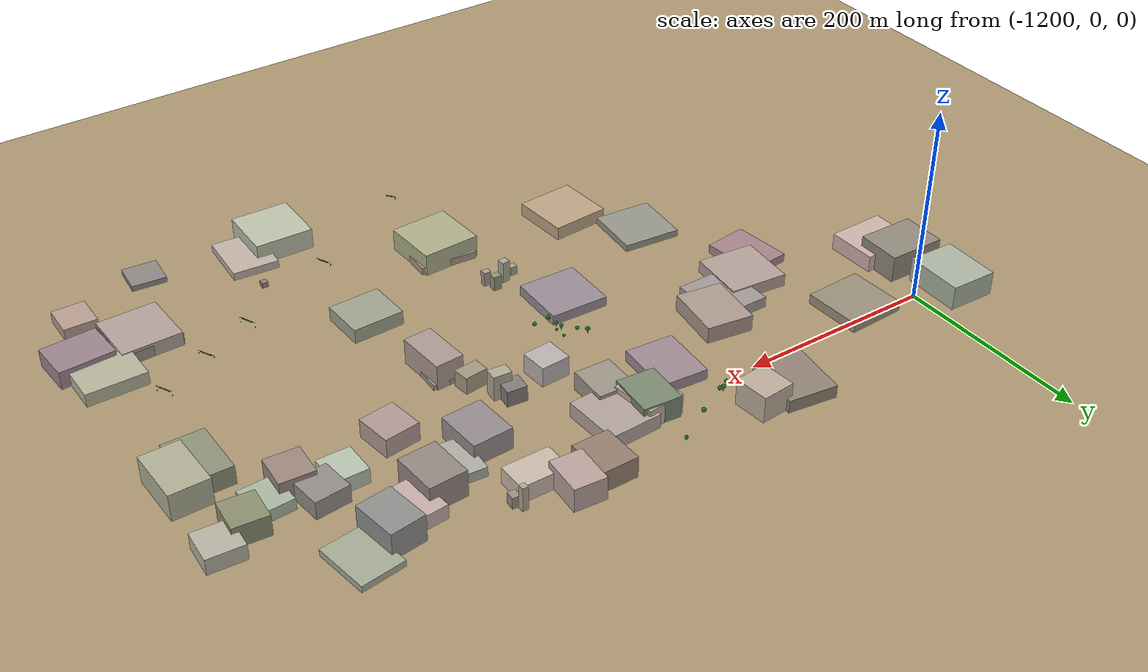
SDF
<sdf version="1.9">
 <world name="crossroad_world">
  <model name="ground_plane">
   <static>true</static>
   <pose>0 0 -0.05 0 0 0</pose>
   <link name="link">
    <collision name="collision">
     <geometry><plane><normal>0 0 1</normal><size>10000 10000</size></plane></geometry>
    </collision>
    <visual name="visual">
     <geometry><plane><normal>0 0 1</normal><size>15000 15000</size></plane></geometry>
     <material><ambient>0.68 0.60 0.45 1</ambient><diffuse>0.68 0.60 0.45 1</diffuse></material>
    </visual>
   </link>
  </model>
  <model name="gantry_20">
   <static>true</static>
   <pose>-869.618 -436.518 0 0 0 2.220</pose>
   <link name="link">
    <visual name="post_l">
     <pose>-5.700 0 2.925 0 0 0</pose>
     <geometry><cylinder><radius>0.1</radius><length>5.85</length></cylinder></geometry>
     <material><ambient>0.30 0.30 0.35 1</ambient><diffuse>0.30 0.30 0.35 1</diffuse></material>
    </visual>
    <visual name="post_r">
     <pose>5.700 0 2.925 0 0 0</pose>
     <geometry><cylinder><radius>0.1</radius><length>5.85</length></cylinder></geometry>
     <material><ambient>0.30 0.30 0.35 1</ambient><diffuse>0.30 0.30 0.35 1</diffuse></material>
    </visual>
    <visual name="beam">
     <pose>0 0 6.000 0 0 0</pose>
     <geometry><box><size>11.400 0.22 0.22</size></box></geometry>
     <material><ambient>0.30 0.30 0.35 1</ambient><diffuse>0.30 0.30 0.35 1</diffuse></material>
    </visual>
    <visual name="sign_border">
     <pose>0 -0.14 5.450 0 0 0</pose>
     <geometry><box><size>8.288 0.04 0.92</size></box></geometry>
     <material><ambient>0.90 0.85 0.10 1</ambient><diffuse>0.90 0.85 0.10 1</diffuse></material>
    </visual>
    <visual name="sign_panel">
     <pose>0 -0.15 5.450 0 0 0</pose>
     <geometry><box><size>8.208 0.05 0.86</size></box></geometry>
     <material><ambient>0.05 0.38 0.10 1</ambient><diffuse>0.05 0.38 0.10 1</diffuse></material>
    </visual>
    <collision name="col_post_l">
     <pose>-5.700 0 2.925 0 0 0</pose>
     <geometry><cylinder><radius>0.1</radius><length>5.85</length></cylinder></geometry>
    </collision>
    <collision name="col_post_r">
     <pose>5.700 0 2.925 0 0 0</pose>
     <geometry><cylinder><radius>0.1</radius><length>5.85</length></cylinder></geometry>
    </collision>
    <collision name="col_beam">
     <pose>0 0 6.000 0 0 0</pose>
     <geometry><box><size>11.400 0.22 0.22</size></box></geometry>
    </collision>
   </link>
  </model>
  <model name="gantry_65">
   <static>true</static>
   <pose>-754.668 -367.690 0 0 0 2.001</pose>
   <link name="link">
    <visual name="post_l">
     <pose>-8.900 0 2.925 0 0 0</pose>
     <geometry><cylinder><radius>0.1</radius><length>5.85</length></cylinder></geometry>
     <material><ambient>0.30 0.30 0.35 1</ambient><diffuse>0.30 0.30 0.35 1</diffuse></material>
    </visual>
    <visual name="post_r">
     <pose>8.900 0 2.925 0 0 0</pose>
     <geometry><cylinder><radius>0.1</radius><length>5.85</length></cylinder></geometry>
     <material><ambient>0.30 0.30 0.35 1</ambient><diffuse>0.30 0.30 0.35 1</diffuse></material>
    </visual>
    <visual name="beam">
     <pose>0 0 6.000 0 0 0</pose>
     <geometry><box><size>17.800 0.22 0.22</size></box></geometry>
     <material><ambient>0.30 0.30 0.35 1</ambient><diffuse>0.30 0.30 0.35 1</diffuse></material>
    </visual>
    <visual name="sign_border">
     <pose>0 -0.14 5.450 0 0 0</pose>
     <geometry><box><size>12.896 0.04 0.92</size></box></geometry>
     <material><ambient>0.90 0.85 0.10 1</ambient><diffuse>0.90 0.85 0.10 1</diffuse></material>
    </visual>
    <visual name="sign_panel">
     <pose>0 -0.15 5.450 0 0 0</pose>
     <geometry><box><size>12.816 0.05 0.86</size></box></geometry>
     <material><ambient>0.05 0.38 0.10 1</ambient><diffuse>0.05 0.38 0.10 1</diffuse></material>
    </visual>
    <collision name="col_post_l">
     <pose>-8.900 0 2.925 0 0 0</pose>
     <geometry><cylinder><radius>0.1</radius><length>5.85</length></cylinder></geometry>
    </collision>
    <collision name="col_post_r">
     <pose>8.900 0 2.925 0 0 0</pose>
     <geometry><cylinder><radius>0.1</radius><length>5.85</length></cylinder></geometry>
    </collision>
    <collision name="col_beam">
     <pose>0 0 6.000 0 0 0</pose>
     <geometry><box><size>17.800 0.22 0.22</size></box></geometry>
    </collision>
   </link>
  </model>
  <model name="gantry_86">
   <static>true</static>
   <pose>-594.381 -292.626 0 0 0 2.050</pose>
   <link name="link">
    <visual name="post_l">
     <pose>-8.900 0 2.925 0 0 0</pose>
     <geometry><cylinder><radius>0.1</radius><length>5.85</length></cylinder></geometry>
     <material><ambient>0.30 0.30 0.35 1</ambient><diffuse>0.30 0.30 0.35 1</diffuse></material>
    </visual>
    <visual name="post_r">
     <pose>8.900 0 2.925 0 0 0</pose>
     <geometry><cylinder><radius>0.1</radius><length>5.85</length></cylinder></geometry>
     <material><ambient>0.30 0.30 0.35 1</ambient><diffuse>0.30 0.30 0.35 1</diffuse></material>
    </visual>
    <visual name="beam">
     <pose>0 0 6.000 0 0 0</pose>
     <geometry><box><size>17.800 0.22 0.22</size></box></geometry>
     <material><ambient>0.30 0.30 0.35 1</ambient><diffuse>0.30 0.30 0.35 1</diffuse></material>
    </visual>
    <visual name="sign_border">
     <pose>0 -0.14 5.450 0 0 0</pose>
     <geometry><box><size>12.896 0.04 0.92</size></box></geometry>
     <material><ambient>0.90 0.85 0.10 1</ambient><diffuse>0.90 0.85 0.10 1</diffuse></material>
    </visual>
    <visual name="sign_panel">
     <pose>0 -0.15 5.450 0 0 0</pose>
     <geometry><box><size>12.816 0.05 0.86</size></box></geometry>
     <material><ambient>0.05 0.38 0.10 1</ambient><diffuse>0.05 0.38 0.10 1</diffuse></material>
    </visual>
    <collision name="col_post_l">
     <pose>-8.900 0 2.925 0 0 0</pose>
     <geometry><cylinder><radius>0.1</radius><length>5.85</length></cylinder></geometry>
    </collision>
    <collision name="col_post_r">
     <pose>8.900 0 2.925 0 0 0</pose>
     <geometry><cylinder><radius>0.1</radius><length>5.85</length></cylinder></geometry>
    </collision>
    <collision name="col_beam">
     <pose>0 0 6.000 0 0 0</pose>
     <geometry><box><size>17.800 0.22 0.22</size></box></geometry>
    </collision>
   </link>
  </model>
  <model name="gantry_87">
   <static>true</static>
   <pose>-540.982 -265.334 0 0 0 2.031</pose>
   <link name="link">
    <visual name="post_l">
     <pose>-8.900 0 2.925 0 0 0</pose>
     <geometry><cylinder><radius>0.1</radius><length>5.85</length></cylinder></geometry>
     <material><ambient>0.30 0.30 0.35 1</ambient><diffuse>0.30 0.30 0.35 1</diffuse></material>
    </visual>
    <visual name="post_r">
     <pose>8.900 0 2.925 0 0 0</pose>
     <geometry><cylinder><radius>0.1</radius><length>5.85</length></cylinder></geometry>
     <material><ambient>0.30 0.30 0.35 1</ambient><diffuse>0.30 0.30 0.35 1</diffuse></material>
    </visual>
    <visual name="beam">
     <pose>0 0 6.000 0 0 0</pose>
     <geometry><box><size>17.800 0.22 0.22</size></box></geometry>
     <material><ambient>0.30 0.30 0.35 1</ambient><diffuse>0.30 0.30 0.35 1</diffuse></material>
    </visual>
    <visual name="sign_border">
     <pose>0 -0.14 5.450 0 0 0</pose>
     <geometry><box><size>12.896 0.04 0.92</size></box></geometry>
     <material><ambient>0.90 0.85 0.10 1</ambient><diffuse>0.90 0.85 0.10 1</diffuse></material>
    </visual>
    <visual name="sign_panel">
     <pose>0 -0.15 5.450 0 0 0</pose>
     <geometry><box><size>12.816 0.05 0.86</size></box></geometry>
     <material><ambient>0.05 0.38 0.10 1</ambient><diffuse>0.05 0.38 0.10 1</diffuse></material>
    </visual>
    <collision name="col_post_l">
     <pose>-8.900 0 2.925 0 0 0</pose>
     <geometry><cylinder><radius>0.1</radius><length>5.85</length></cylinder></geometry>
    </collision>
    <collision name="col_post_r">
     <pose>8.900 0 2.925 0 0 0</pose>
     <geometry><cylinder><radius>0.1</radius><length>5.85</length></cylinder></geometry>
    </collision>
    <collision name="col_beam">
     <pose>0 0 6.000 0 0 0</pose>
     <geometry><box><size>17.800 0.22 0.22</size></box></geometry>
    </collision>
   </link>
  </model>
  <model name="gantry_88">
   <static>true</static>
   <pose>-648.376 -318.927 0 0 0 2.000</pose>
   <link name="link">
    <visual name="post_l">
     <pose>-8.900 0 2.925 0 0 0</pose>
     <geometry><cylinder><radius>0.1</radius><length>5.85</length></cylinder></geometry>
     <material><ambient>0.30 0.30 0.35 1</ambient><diffuse>0.30 0.30 0.35 1</diffuse></material>
    </visual>
    <visual name="post_r">
     <pose>8.900 0 2.925 0 0 0</pose>
     <geometry><cylinder><radius>0.1</radius><length>5.85</length></cylinder></geometry>
     <material><ambient>0.30 0.30 0.35 1</ambient><diffuse>0.30 0.30 0.35 1</diffuse></material>
    </visual>
    <visual name="beam">
     <pose>0 0 6.000 0 0 0</pose>
     <geometry><box><size>17.800 0.22 0.22</size></box></geometry>
     <material><ambient>0.30 0.30 0.35 1</ambient><diffuse>0.30 0.30 0.35 1</diffuse></material>
    </visual>
    <visual name="sign_border">
     <pose>0 -0.14 5.450 0 0 0</pose>
     <geometry><box><size>12.896 0.04 0.92</size></box></geometry>
     <material><ambient>0.90 0.85 0.10 1</ambient><diffuse>0.90 0.85 0.10 1</diffuse></material>
    </visual>
    <visual name="sign_panel">
     <pose>0 -0.15 5.450 0 0 0</pose>
     <geometry><box><size>12.816 0.05 0.86</size></box></geometry>
     <material><ambient>0.05 0.38 0.10 1</ambient><diffuse>0.05 0.38 0.10 1</diffuse></material>
    </visual>
    <collision name="col_post_l">
     <pose>-8.900 0 2.925 0 0 0</pose>
     <geometry><cylinder><radius>0.1</radius><length>5.85</length></cylinder></geometry>
    </collision>
    <collision name="col_post_r">
     <pose>8.900 0 2.925 0 0 0</pose>
     <geometry><cylinder><radius>0.1</radius><length>5.85</length></cylinder></geometry>
    </collision>
    <collision name="col_beam">
     <pose>0 0 6.000 0 0 0</pose>
     <geometry><box><size>17.800 0.22 0.22</size></box></geometry>
    </collision>
   </link>
  </model>
  <model name="tree_349">
   <static>true</static>
   <pose>-885.166 48.612 0 0 0 0</pose>
   <link name="link">
    <visual name="trunk">
     <pose>0 0 1.507 0 0 0</pose>
     <geometry><cylinder><radius>0.132</radius><length>3.014</length></cylinder></geometry>
     <material><ambient>0.38 0.22 0.08 1</ambient><diffuse>0.38 0.22 0.08 1</diffuse></material>
    </visual>
    <visual name="canopy">
     <pose>0 0 4.177 0 0 0</pose>
     <geometry><sphere><radius>1.789</radius></sphere></geometry>
     <material><ambient>0.08 0.44 0.10 1</ambient><diffuse>0.08 0.44 0.10 1</diffuse></material>
    </visual>
    <collision name="col">
     <pose>0 0 1.507 0 0 0</pose>
     <geometry><cylinder><radius>0.132</radius><length>3.014</length></cylinder></geometry>
    </collision>
   </link>
  </model>
  <model name="tree_350">
   <static>true</static>
   <pose>-951.689 11.548 0 0 0 0</pose>
   <link name="link">
    <visual name="trunk">
     <pose>0 0 1.739 0 0 0</pose>
     <geometry><cylinder><radius>0.152</radius><length>3.479</length></cylinder></geometry>
     <material><ambient>0.38 0.22 0.08 1</ambient><diffuse>0.38 0.22 0.08 1</diffuse></material>
    </visual>
    <visual name="canopy">
     <pose>0 0 4.822 0 0 0</pose>
     <geometry><sphere><radius>2.066</radius></sphere></geometry>
     <material><ambient>0.08 0.44 0.10 1</ambient><diffuse>0.08 0.44 0.10 1</diffuse></material>
    </visual>
    <collision name="col">
     <pose>0 0 1.739 0 0 0</pose>
     <geometry><cylinder><radius>0.152</radius><length>3.479</length></cylinder></geometry>
    </collision>
   </link>
  </model>
  <model name="tree_353">
   <static>true</static>
   <pose>-962.632 6.974 0 0 0 0</pose>
   <link name="link">
    <visual name="trunk">
     <pose>0 0 1.648 0 0 0</pose>
     <geometry><cylinder><radius>0.144</radius><length>3.297</length></cylinder></geometry>
     <material><ambient>0.38 0.22 0.08 1</ambient><diffuse>0.38 0.22 0.08 1</diffuse></material>
    </visual>
    <visual name="canopy">
     <pose>0 0 4.569 0 0 0</pose>
     <geometry><sphere><radius>1.958</radius></sphere></geometry>
     <material><ambient>0.08 0.44 0.10 1</ambient><diffuse>0.08 0.44 0.10 1</diffuse></material>
    </visual>
    <collision name="col">
     <pose>0 0 1.648 0 0 0</pose>
     <geometry><cylinder><radius>0.144</radius><length>3.297</length></cylinder></geometry>
    </collision>
   </link>
  </model>
  <model name="tree_357">
   <static>true</static>
   <pose>-975.649 -0.327 0 0 0 0</pose>
   <link name="link">
    <visual name="trunk">
     <pose>0 0 1.661 0 0 0</pose>
     <geometry><cylinder><radius>0.145</radius><length>3.322</length></cylinder></geometry>
     <material><ambient>0.38 0.22 0.08 1</ambient><diffuse>0.38 0.22 0.08 1</diffuse></material>
    </visual>
    <visual name="canopy">
     <pose>0 0 4.604 0 0 0</pose>
     <geometry><sphere><radius>1.972</radius></sphere></geometry>
     <material><ambient>0.08 0.44 0.10 1</ambient><diffuse>0.08 0.44 0.10 1</diffuse></material>
    </visual>
    <collision name="col">
     <pose>0 0 1.661 0 0 0</pose>
     <geometry><cylinder><radius>0.145</radius><length>3.322</length></cylinder></geometry>
    </collision>
   </link>
  </model>
  <model name="tree_359">
   <static>true</static>
   <pose>-955.047 12.117 0 0 0 0</pose>
   <link name="link">
    <visual name="trunk">
     <pose>0 0 1.864 0 0 0</pose>
     <geometry><cylinder><radius>0.163</radius><length>3.727</length></cylinder></geometry>
     <material><ambient>0.38 0.22 0.08 1</ambient><diffuse>0.38 0.22 0.08 1</diffuse></material>
    </visual>
    <visual name="canopy">
     <pose>0 0 5.166 0 0 0</pose>
     <geometry><sphere><radius>2.213</radius></sphere></geometry>
     <material><ambient>0.08 0.44 0.10 1</ambient><diffuse>0.08 0.44 0.10 1</diffuse></material>
    </visual>
    <collision name="col">
     <pose>0 0 1.864 0 0 0</pose>
     <geometry><cylinder><radius>0.163</radius><length>3.727</length></cylinder></geometry>
    </collision>
   </link>
  </model>
  <model name="tree_361">
   <static>true</static>
   <pose>-920.026 28.542 0 0 0 0</pose>
   <link name="link">
    <visual name="trunk">
     <pose>0 0 1.926 0 0 0</pose>
     <geometry><cylinder><radius>0.169</radius><length>3.852</length></cylinder></geometry>
     <material><ambient>0.38 0.22 0.08 1</ambient><diffuse>0.38 0.22 0.08 1</diffuse></material>
    </visual>
    <visual name="canopy">
     <pose>0 0 5.338 0 0 0</pose>
     <geometry><sphere><radius>2.287</radius></sphere></geometry>
     <material><ambient>0.08 0.44 0.10 1</ambient><diffuse>0.08 0.44 0.10 1</diffuse></material>
    </visual>
    <collision name="col">
     <pose>0 0 1.926 0 0 0</pose>
     <geometry><cylinder><radius>0.169</radius><length>3.852</length></cylinder></geometry>
    </collision>
   </link>
  </model>
  <model name="tree_391">
   <static>true</static>
   <pose>-882.330 -133.913 0 0 0 0</pose>
   <link name="link">
    <visual name="trunk">
     <pose>0 0 1.240 0 0 0</pose>
     <geometry><cylinder><radius>0.109</radius><length>2.481</length></cylinder></geometry>
     <material><ambient>0.38 0.22 0.08 1</ambient><diffuse>0.38 0.22 0.08 1</diffuse></material>
    </visual>
    <visual name="canopy">
     <pose>0 0 3.438 0 0 0</pose>
     <geometry><sphere><radius>1.473</radius></sphere></geometry>
     <material><ambient>0.08 0.44 0.10 1</ambient><diffuse>0.08 0.44 0.10 1</diffuse></material>
    </visual>
    <collision name="col">
     <pose>0 0 1.240 0 0 0</pose>
     <geometry><cylinder><radius>0.109</radius><length>2.481</length></cylinder></geometry>
    </collision>
   </link>
  </model>
  <model name="tree_392">
   <static>true</static>
   <pose>-888.324 -146.548 0 0 0 0</pose>
   <link name="link">
    <visual name="trunk">
     <pose>0 0 1.684 0 0 0</pose>
     <geometry><cylinder><radius>0.147</radius><length>3.367</length></cylinder></geometry>
     <material><ambient>0.38 0.22 0.08 1</ambient><diffuse>0.38 0.22 0.08 1</diffuse></material>
    </visual>
    <visual name="canopy">
     <pose>0 0 4.667 0 0 0</pose>
     <geometry><sphere><radius>1.999</radius></sphere></geometry>
     <material><ambient>0.08 0.44 0.10 1</ambient><diffuse>0.08 0.44 0.10 1</diffuse></material>
    </visual>
    <collision name="col">
     <pose>0 0 1.684 0 0 0</pose>
     <geometry><cylinder><radius>0.147</radius><length>3.367</length></cylinder></geometry>
    </collision>
   </link>
  </model>
  <model name="tree_393">
   <static>true</static>
   <pose>-885.140 -163.308 0 0 0 0</pose>
   <link name="link">
    <visual name="trunk">
     <pose>0 0 2.032 0 0 0</pose>
     <geometry><cylinder><radius>0.178</radius><length>4.064</length></cylinder></geometry>
     <material><ambient>0.38 0.22 0.08 1</ambient><diffuse>0.38 0.22 0.08 1</diffuse></material>
    </visual>
    <visual name="canopy">
     <pose>0 0 5.632 0 0 0</pose>
     <geometry><sphere><radius>2.413</radius></sphere></geometry>
     <material><ambient>0.08 0.44 0.10 1</ambient><diffuse>0.08 0.44 0.10 1</diffuse></material>
    </visual>
    <collision name="col">
     <pose>0 0 2.032 0 0 0</pose>
     <geometry><cylinder><radius>0.178</radius><length>4.064</length></cylinder></geometry>
    </collision>
   </link>
  </model>
  <model name="tree_394">
   <static>true</static>
   <pose>-882.125 -145.203 0 0 0 0</pose>
   <link name="link">
    <visual name="trunk">
     <pose>0 0 1.217 0 0 0</pose>
     <geometry><cylinder><radius>0.107</radius><length>2.435</length></cylinder></geometry>
     <material><ambient>0.38 0.22 0.08 1</ambient><diffuse>0.38 0.22 0.08 1</diffuse></material>
    </visual>
    <visual name="canopy">
     <pose>0 0 3.374 0 0 0</pose>
     <geometry><sphere><radius>1.446</radius></sphere></geometry>
     <material><ambient>0.08 0.44 0.10 1</ambient><diffuse>0.08 0.44 0.10 1</diffuse></material>
    </visual>
    <collision name="col">
     <pose>0 0 1.217 0 0 0</pose>
     <geometry><cylinder><radius>0.107</radius><length>2.435</length></cylinder></geometry>
    </collision>
   </link>
  </model>
  <model name="tree_395">
   <static>true</static>
   <pose>-868.819 -162.292 0 0 0 0</pose>
   <link name="link">
    <visual name="trunk">
     <pose>0 0 1.741 0 0 0</pose>
     <geometry><cylinder><radius>0.152</radius><length>3.481</length></cylinder></geometry>
     <material><ambient>0.38 0.22 0.08 1</ambient><diffuse>0.38 0.22 0.08 1</diffuse></material>
    </visual>
    <visual name="canopy">
     <pose>0 0 4.825 0 0 0</pose>
     <geometry><sphere><radius>2.067</radius></sphere></geometry>
     <material><ambient>0.08 0.44 0.10 1</ambient><diffuse>0.08 0.44 0.10 1</diffuse></material>
    </visual>
    <collision name="col">
     <pose>0 0 1.741 0 0 0</pose>
     <geometry><cylinder><radius>0.152</radius><length>3.481</length></cylinder></geometry>
    </collision>
   </link>
  </model>
  <model name="tree_396">
   <static>true</static>
   <pose>-892.895 -158.398 0 0 0 0</pose>
   <link name="link">
    <visual name="trunk">
     <pose>0 0 1.216 0 0 0</pose>
     <geometry><cylinder><radius>0.106</radius><length>2.432</length></cylinder></geometry>
     <material><ambient>0.38 0.22 0.08 1</ambient><diffuse>0.38 0.22 0.08 1</diffuse></material>
    </visual>
    <visual name="canopy">
     <pose>0 0 3.371 0 0 0</pose>
     <geometry><sphere><radius>1.444</radius></sphere></geometry>
     <material><ambient>0.08 0.44 0.10 1</ambient><diffuse>0.08 0.44 0.10 1</diffuse></material>
    </visual>
    <collision name="col">
     <pose>0 0 1.216 0 0 0</pose>
     <geometry><cylinder><radius>0.106</radius><length>2.432</length></cylinder></geometry>
    </collision>
   </link>
  </model>
  <model name="tree_397">
   <static>true</static>
   <pose>-887.014 -153.077 0 0 0 0</pose>
   <link name="link">
    <visual name="trunk">
     <pose>0 0 1.586 0 0 0</pose>
     <geometry><cylinder><radius>0.139</radius><length>3.173</length></cylinder></geometry>
     <material><ambient>0.38 0.22 0.08 1</ambient><diffuse>0.38 0.22 0.08 1</diffuse></material>
    </visual>
    <visual name="canopy">
     <pose>0 0 4.398 0 0 0</pose>
     <geometry><sphere><radius>1.884</radius></sphere></geometry>
     <material><ambient>0.08 0.44 0.10 1</ambient><diffuse>0.08 0.44 0.10 1</diffuse></material>
    </visual>
    <collision name="col">
     <pose>0 0 1.586 0 0 0</pose>
     <geometry><cylinder><radius>0.139</radius><length>3.173</length></cylinder></geometry>
    </collision>
   </link>
  </model>
  <model name="tree_398">
   <static>true</static>
   <pose>-905.219 -127.689 0 0 0 0</pose>
   <link name="link">
    <visual name="trunk">
     <pose>0 0 1.905 0 0 0</pose>
     <geometry><cylinder><radius>0.167</radius><length>3.809</length></cylinder></geometry>
     <material><ambient>0.38 0.22 0.08 1</ambient><diffuse>0.38 0.22 0.08 1</diffuse></material>
    </visual>
    <visual name="canopy">
     <pose>0 0 5.279 0 0 0</pose>
     <geometry><sphere><radius>2.262</radius></sphere></geometry>
     <material><ambient>0.08 0.44 0.10 1</ambient><diffuse>0.08 0.44 0.10 1</diffuse></material>
    </visual>
    <collision name="col">
     <pose>0 0 1.905 0 0 0</pose>
     <geometry><cylinder><radius>0.167</radius><length>3.809</length></cylinder></geometry>
    </collision>
   </link>
  </model>
  <model name="tree_399">
   <static>true</static>
   <pose>-898.586 -135.236 0 0 0 0</pose>
   <link name="link">
    <visual name="trunk">
     <pose>0 0 1.608 0 0 0</pose>
     <geometry><cylinder><radius>0.141</radius><length>3.215</length></cylinder></geometry>
     <material><ambient>0.38 0.22 0.08 1</ambient><diffuse>0.38 0.22 0.08 1</diffuse></material>
    </visual>
    <visual name="canopy">
     <pose>0 0 4.456 0 0 0</pose>
     <geometry><sphere><radius>1.909</radius></sphere></geometry>
     <material><ambient>0.08 0.44 0.10 1</ambient><diffuse>0.08 0.44 0.10 1</diffuse></material>
    </visual>
    <collision name="col">
     <pose>0 0 1.608 0 0 0</pose>
     <geometry><cylinder><radius>0.141</radius><length>3.215</length></cylinder></geometry>
    </collision>
   </link>
  </model>
  <model name="building_158">
   <static>true</static>
   <pose>-1011.644 42.962 6.649 0 0 -0.135</pose>
   <link name="link">
    <visual name="body">
     <geometry><box><size>50.18 60.00 13.30</size></box></geometry>
     <material><ambient>0.58 0.53 0.47 1</ambient><diffuse>0.58 0.53 0.47 1</diffuse></material>
    </visual>
    <collision name="col"><geometry><box><size>50.18 60.00 13.30</size></box></geometry></collision>
   </link>
  </model>
  <model name="building_218">
   <static>true</static>
   <pose>-735.307 -50.320 11.355 0 0 0.055</pose>
   <link name="link">
    <visual name="body">
     <geometry><box><size>40.56 48.26 22.71</size></box></geometry>
     <material><ambient>0.60 0.56 0.56 1</ambient><diffuse>0.60 0.56 0.56 1</diffuse></material>
    </visual>
    <collision name="col"><geometry><box><size>40.56 48.26 22.71</size></box></geometry></collision>
   </link>
  </model>
  <model name="building_219">
   <static>true</static>
   <pose>-703.207 -33.663 5.061 0 0 -0.074</pose>
   <link name="link">
    <visual name="body">
     <geometry><box><size>36.44 47.07 10.12</size></box></geometry>
     <material><ambient>0.69 0.69 0.66 1</ambient><diffuse>0.69 0.69 0.66 1</diffuse></material>
    </visual>
    <collision name="col"><geometry><box><size>36.44 47.07 10.12</size></box></geometry></collision>
   </link>
  </model>
  <model name="building_220">
   <static>true</static>
   <pose>-672.662 -19.329 13.996 0 0 0.061</pose>
   <link name="link">
    <visual name="body">
     <geometry><box><size>37.93 47.08 27.99</size></box></geometry>
     <material><ambient>0.60 0.54 0.52 1</ambient><diffuse>0.60 0.54 0.52 1</diffuse></material>
    </visual>
    <collision name="col"><geometry><box><size>37.93 47.08 27.99</size></box></geometry></collision>
   </link>
  </model>
  <model name="building_221">
   <static>true</static>
   <pose>-644.733 -4.465 7.491 0 0 0.103</pose>
   <link name="link">
    <visual name="body">
     <geometry><box><size>36.86 47.03 14.98</size></box></geometry>
     <material><ambient>0.79 0.69 0.68 1</ambient><diffuse>0.79 0.69 0.68 1</diffuse></material>
    </visual>
    <collision name="col"><geometry><box><size>36.86 47.03 14.98</size></box></geometry></collision>
   </link>
  </model>
  <model name="building_222">
   <static>true</static>
   <pose>-616.857 9.376 13.925 0 0 0.137</pose>
   <link name="link">
    <visual name="body">
     <geometry><box><size>35.41 46.43 27.85</size></box></geometry>
     <material><ambient>0.57 0.57 0.56 1</ambient><diffuse>0.57 0.57 0.56 1</diffuse></material>
    </visual>
    <collision name="col"><geometry><box><size>35.41 46.43 27.85</size></box></geometry></collision>
   </link>
  </model>
  <model name="building_223">
   <static>true</static>
   <pose>-583.194 21.284 3.335 0 0 0.138</pose>
   <link name="link">
    <visual name="body">
     <geometry><box><size>43.86 56.08 6.67</size></box></geometry>
     <material><ambient>0.66 0.68 0.59 1</ambient><diffuse>0.66 0.68 0.59 1</diffuse></material>
    </visual>
    <collision name="col"><geometry><box><size>43.86 56.08 6.67</size></box></geometry></collision>
   </link>
  </model>
  <model name="building_227">
   <static>true</static>
   <pose>-495.986 -136.419 13.755 0 0 0.016</pose>
   <link name="link">
    <visual name="body">
     <geometry><box><size>39.03 59.48 27.51</size></box></geometry>
     <material><ambient>0.70 0.70 0.60 1</ambient><diffuse>0.70 0.70 0.60 1</diffuse></material>
    </visual>
    <collision name="col"><geometry><box><size>39.03 59.48 27.51</size></box></geometry></collision>
   </link>
  </model>
  <model name="building_228">
   <static>true</static>
   <pose>-520.897 -148.733 9.947 0 0 -0.005</pose>
   <link name="link">
    <visual name="body">
     <geometry><box><size>41.32 59.49 19.89</size></box></geometry>
     <material><ambient>0.57 0.58 0.48 1</ambient><diffuse>0.57 0.58 0.48 1</diffuse></material>
    </visual>
    <collision name="col"><geometry><box><size>41.32 59.49 19.89</size></box></geometry></collision>
   </link>
  </model>
  <model name="building_229">
   <static>true</static>
   <pose>-493.090 -50.046 8.068 0 0 -0.065</pose>
   <link name="link">
    <visual name="body">
     <geometry><box><size>35.93 35.62 16.14</size></box></geometry>
     <material><ambient>0.73 0.71 0.65 1</ambient><diffuse>0.73 0.71 0.65 1</diffuse></material>
    </visual>
    <collision name="col"><geometry><box><size>35.93 35.62 16.14</size></box></geometry></collision>
   </link>
  </model>
  <model name="building_235">
   <static>true</static>
   <pose>-1239.748 7.852 12.404 0 0 -0.029</pose>
   <link name="link">
    <visual name="body">
     <geometry><box><size>49.37 60.00 24.81</size></box></geometry>
     <material><ambient>0.69 0.72 0.65 1</ambient><diffuse>0.69 0.72 0.65 1</diffuse></material>
    </visual>
    <collision name="col"><geometry><box><size>49.37 60.00 24.81</size></box></geometry></collision>
   </link>
  </model>
  <model name="building_236">
   <static>true</static>
   <pose>-1229.636 -52.716 13.808 0 0 -0.017</pose>
   <link name="link">
    <visual name="body">
     <geometry><box><size>60.00 46.28 27.62</size></box></geometry>
     <material><ambient>0.58 0.55 0.50 1</ambient><diffuse>0.58 0.55 0.50 1</diffuse></material>
    </visual>
    <collision name="col"><geometry><box><size>60.00 46.28 27.62</size></box></geometry></collision>
   </link>
  </model>
  <model name="building_237">
   <static>true</static>
   <pose>-1221.737 -82.107 8.612 0 0 0.023</pose>
   <link name="link">
    <visual name="body">
     <geometry><box><size>60.00 51.40 17.22</size></box></geometry>
     <material><ambient>0.82 0.71 0.68 1</ambient><diffuse>0.82 0.71 0.68 1</diffuse></material>
    </visual>
    <collision name="col"><geometry><box><size>60.00 51.40 17.22</size></box></geometry></collision>
   </link>
  </model>
  <model name="building_238">
   <static>true</static>
   <pose>-1140.101 -19.110 5.200 0 0 0.048</pose>
   <link name="link">
    <visual name="body">
     <geometry><box><size>60.00 60.00 10.40</size></box></geometry>
     <material><ambient>0.61 0.57 0.49 1</ambient><diffuse>0.61 0.57 0.49 1</diffuse></material>
    </visual>
    <collision name="col"><geometry><box><size>60.00 60.00 10.40</size></box></geometry></collision>
   </link>
  </model>
  <model name="building_239">
   <static>true</static>
   <pose>-1041.283 -96.860 5.700 0 0 0.011</pose>
   <link name="link">
    <visual name="body">
     <geometry><box><size>57.02 60.00 11.40</size></box></geometry>
     <material><ambient>0.65 0.61 0.61 1</ambient><diffuse>0.65 0.61 0.61 1</diffuse></material>
    </visual>
    <collision name="col"><geometry><box><size>57.02 60.00 11.40</size></box></geometry></collision>
   </link>
  </model>
  <model name="building_240">
   <static>true</static>
   <pose>-858.414 -325.923 3.848 0 0 -0.056</pose>
   <link name="link">
    <visual name="body">
     <geometry><box><size>60.00 59.25 7.70</size></box></geometry>
     <material><ambient>0.69 0.60 0.56 1</ambient><diffuse>0.69 0.60 0.56 1</diffuse></material>
    </visual>
    <collision name="col"><geometry><box><size>60.00 59.25 7.70</size></box></geometry></collision>
   </link>
  </model>
  <model name="building_241">
   <static>true</static>
   <pose>-858.414 -325.923 11.455 0 0 0.052</pose>
   <link name="link">
    <visual name="body">
     <geometry><box><size>60.00 59.25 22.91</size></box></geometry>
     <material><ambient>0.69 0.70 0.55 1</ambient><diffuse>0.69 0.70 0.55 1</diffuse></material>
    </visual>
    <collision name="col"><geometry><box><size>60.00 59.25 22.91</size></box></geometry></collision>
   </link>
  </model>
  <model name="building_242">
   <static>true</static>
   <pose>-773.863 -122.488 8.775 0 0 0.118</pose>
   <link name="link">
    <visual name="body">
     <geometry><box><size>24.06 16.71 17.55</size></box></geometry>
     <material><ambient>0.65 0.61 0.52 1</ambient><diffuse>0.65 0.61 0.52 1</diffuse></material>
    </visual>
    <collision name="col"><geometry><box><size>24.06 16.71 17.55</size></box></geometry></collision>
   </link>
  </model>
  <model name="building_243">
   <static>true</static>
   <pose>-787.828 -96.694 12.915 0 0 -0.089</pose>
   <link name="link">
    <visual name="body">
     <geometry><box><size>18.55 12.96 25.83</size></box></geometry>
     <material><ambient>0.71 0.68 0.59 1</ambient><diffuse>0.71 0.68 0.59 1</diffuse></material>
    </visual>
    <collision name="col"><geometry><box><size>18.55 12.96 25.83</size></box></geometry></collision>
   </link>
  </model>
  <model name="building_244">
   <static>true</static>
   <pose>-794.203 -85.583 8.192 0 0 -0.115</pose>
   <link name="link">
    <visual name="body">
     <geometry><box><size>20.15 19.22 16.38</size></box></geometry>
     <material><ambient>0.53 0.50 0.48 1</ambient><diffuse>0.53 0.50 0.48 1</diffuse></material>
    </visual>
    <collision name="col"><geometry><box><size>20.15 19.22 16.38</size></box></geometry></collision>
   </link>
  </model>
  <model name="building_245">
   <static>true</static>
   <pose>-839.012 -98.524 10.336 0 0 0.065</pose>
   <link name="link">
    <visual name="body">
     <geometry><box><size>30.30 28.46 20.67</size></box></geometry>
     <material><ambient>0.74 0.71 0.70 1</ambient><diffuse>0.74 0.71 0.70 1</diffuse></material>
    </visual>
    <collision name="col"><geometry><box><size>30.30 28.46 20.67</size></box></geometry></collision>
   </link>
  </model>
  <model name="building_246">
   <static>true</static>
   <pose>-1049.416 -245.792 3.604 0 0 -0.089</pose>
   <link name="link">
    <visual name="body">
     <geometry><box><size>60.00 60.00 7.21</size></box></geometry>
     <material><ambient>0.60 0.60 0.55 1</ambient><diffuse>0.60 0.60 0.55 1</diffuse></material>
    </visual>
    <collision name="col"><geometry><box><size>60.00 60.00 7.21</size></box></geometry></collision>
   </link>
  </model>
  <model name="building_337">
   <static>true</static>
   <pose>-722.038 41.525 12.396 0 0 -0.009</pose>
   <link name="link">
    <visual name="body">
     <geometry><box><size>5.76 6.35 24.79</size></box></geometry>
     <material><ambient>0.72 0.66 0.57 1</ambient><diffuse>0.72 0.66 0.57 1</diffuse></material>
    </visual>
    <collision name="col"><geometry><box><size>5.76 6.35 24.79</size></box></geometry></collision>
   </link>
  </model>
  <model name="building_338">
   <static>true</static>
   <pose>-718.132 33.169 5.897 0 0 -0.085</pose>
   <link name="link">
    <visual name="body">
     <geometry><box><size>8.14 9.14 11.79</size></box></geometry>
     <material><ambient>0.64 0.57 0.54 1</ambient><diffuse>0.64 0.57 0.54 1</diffuse></material>
    </visual>
    <collision name="col"><geometry><box><size>8.14 9.14 11.79</size></box></geometry></collision>
   </link>
  </model>
  <model name="building_340">
   <static>true</static>
   <pose>-690.151 -368.859 2.712 0 0 -0.022</pose>
   <link name="link">
    <visual name="body">
     <geometry><box><size>6.27 6.38 5.42</size></box></geometry>
     <material><ambient>0.56 0.51 0.47 1</ambient><diffuse>0.56 0.51 0.47 1</diffuse></material>
    </visual>
    <collision name="col"><geometry><box><size>6.27 6.38 5.42</size></box></geometry></collision>
   </link>
  </model>
  <model name="building_374">
   <static>true</static>
   <pose>-874.472 -238.825 7.728 0 0 -0.020</pose>
   <link name="link">
    <visual name="body">
     <geometry><box><size>8.29 7.43 15.46</size></box></geometry>
     <material><ambient>0.59 0.59 0.49 1</ambient><diffuse>0.59 0.59 0.49 1</diffuse></material>
    </visual>
    <collision name="col"><geometry><box><size>8.29 7.43 15.46</size></box></geometry></collision>
   </link>
  </model>
  <model name="building_375">
   <static>true</static>
   <pose>-888.639 -246.124 11.375 0 0 0.128</pose>
   <link name="link">
    <visual name="body">
     <geometry><box><size>8.29 7.44 22.75</size></box></geometry>
     <material><ambient>0.66 0.67 0.59 1</ambient><diffuse>0.66 0.67 0.59 1</diffuse></material>
    </visual>
    <collision name="col"><geometry><box><size>8.29 7.44 22.75</size></box></geometry></collision>
   </link>
  </model>
  <model name="building_376">
   <static>true</static>
   <pose>-870.653 -250.608 7.383 0 0 -0.056</pose>
   <link name="link">
    <visual name="body">
     <geometry><box><size>7.35 7.13 14.77</size></box></geometry>
     <material><ambient>0.69 0.61 0.56 1</ambient><diffuse>0.69 0.61 0.56 1</diffuse></material>
    </visual>
    <collision name="col"><geometry><box><size>7.35 7.13 14.77</size></box></geometry></collision>
   </link>
  </model>
  <model name="building_377">
   <static>true</static>
   <pose>-901.464 -251.500 4.571 0 0 -0.027</pose>
   <link name="link">
    <visual name="body">
     <geometry><box><size>7.09 7.33 9.14</size></box></geometry>
     <material><ambient>0.67 0.65 0.55 1</ambient><diffuse>0.67 0.65 0.55 1</diffuse></material>
    </visual>
    <collision name="col"><geometry><box><size>7.09 7.33 9.14</size></box></geometry></collision>
   </link>
  </model>
  <model name="building_378">
   <static>true</static>
   <pose>-931.691 -41.556 5.541 0 0 -0.081</pose>
   <link name="link">
    <visual name="body">
     <geometry><box><size>49.47 60.00 11.08</size></box></geometry>
     <material><ambient>0.63 0.55 0.59 1</ambient><diffuse>0.63 0.55 0.59 1</diffuse></material>
    </visual>
    <collision name="col"><geometry><box><size>49.47 60.00 11.08</size></box></geometry></collision>
   </link>
  </model>
  <model name="building_404">
   <static>true</static>
   <pose>-803.988 41.067 10.989 0 0 0.006</pose>
   <link name="link">
    <visual name="body">
     <geometry><box><size>37.56 43.89 21.98</size></box></geometry>
     <material><ambient>0.60 0.51 0.45 1</ambient><diffuse>0.60 0.51 0.45 1</diffuse></material>
    </visual>
    <collision name="col"><geometry><box><size>37.56 43.89 21.98</size></box></geometry></collision>
   </link>
  </model>
  <model name="building_417">
   <static>true</static>
   <pose>-849.224 -7.048 7.609 0 0 0.040</pose>
   <link name="link">
    <visual name="body">
     <geometry><box><size>53.53 60.00 15.22</size></box></geometry>
     <material><ambient>0.71 0.65 0.62 1</ambient><diffuse>0.71 0.65 0.62 1</diffuse></material>
    </visual>
    <collision name="col"><geometry><box><size>53.53 60.00 15.22</size></box></geometry></collision>
   </link>
  </model>
  <model name="building_419">
   <static>true</static>
   <pose>-971.048 48.112 13.604 0 0 0.088</pose>
   <link name="link">
    <visual name="body">
     <geometry><box><size>34.12 35.64 27.21</size></box></geometry>
     <material><ambient>0.75 0.69 0.62 1</ambient><diffuse>0.75 0.69 0.62 1</diffuse></material>
    </visual>
    <collision name="col"><geometry><box><size>34.12 35.64 27.21</size></box></geometry></collision>
   </link>
  </model>
  <model name="building_433">
   <static>true</static>
   <pose>-555.515 -353.199 7.188 0 0 0.021</pose>
   <link name="link">
    <visual name="body">
     <geometry><box><size>60.00 60.00 14.38</size></box></geometry>
     <material><ambient>0.71 0.64 0.61 1</ambient><diffuse>0.71 0.64 0.61 1</diffuse></material>
    </visual>
    <collision name="col"><geometry><box><size>60.00 60.00 14.38</size></box></geometry></collision>
   </link>
  </model>
  <model name="building_434">
   <static>true</static>
   <pose>-555.515 -353.199 5.855 0 0 0.059</pose>
   <link name="link">
    <visual name="body">
     <geometry><box><size>60.00 60.00 11.71</size></box></geometry>
     <material><ambient>0.61 0.56 0.52 1</ambient><diffuse>0.61 0.56 0.52 1</diffuse></material>
    </visual>
    <collision name="col"><geometry><box><size>60.00 60.00 11.71</size></box></geometry></collision>
   </link>
  </model>
  <model name="building_475">
   <static>true</static>
   <pose>-513.859 -408.243 6.299 0 0 -0.018</pose>
   <link name="link">
    <visual name="body">
     <geometry><box><size>33.23 35.18 12.60</size></box></geometry>
     <material><ambient>0.73 0.63 0.57 1</ambient><diffuse>0.73 0.63 0.57 1</diffuse></material>
    </visual>
    <collision name="col"><geometry><box><size>33.23 35.18 12.60</size></box></geometry></collision>
   </link>
  </model>
  <model name="building_477">
   <static>true</static>
   <pose>-695.623 -421.706 4.008 0 0 -0.075</pose>
   <link name="link">
    <visual name="body">
     <geometry><box><size>47.01 60.00 8.02</size></box></geometry>
     <material><ambient>0.77 0.71 0.67 1</ambient><diffuse>0.77 0.71 0.67 1</diffuse></material>
    </visual>
    <collision name="col"><geometry><box><size>47.01 60.00 8.02</size></box></geometry></collision>
   </link>
  </model>
  <model name="building_498">
   <static>true</static>
   <pose>-493.718 -346.259 9.381 0 0 0.057</pose>
   <link name="link">
    <visual name="body">
     <geometry><box><size>55.73 43.56 18.76</size></box></geometry>
     <material><ambient>0.62 0.53 0.57 1</ambient><diffuse>0.62 0.53 0.57 1</diffuse></material>
    </visual>
    <collision name="col"><geometry><box><size>55.73 43.56 18.76</size></box></geometry></collision>
   </link>
  </model>
  <model name="building_499">
   <static>true</static>
   <pose>-506.329 -311.720 6.779 0 0 -0.002</pose>
   <link name="link">
    <visual name="body">
     <geometry><box><size>60.00 50.53 13.56</size></box></geometry>
     <material><ambient>0.72 0.72 0.62 1</ambient><diffuse>0.72 0.72 0.62 1</diffuse></material>
    </visual>
    <collision name="col"><geometry><box><size>60.00 50.53 13.56</size></box></geometry></collision>
   </link>
  </model>
  <model name="building_500">
   <static>true</static>
   <pose>-599.304 -447.128 2.838 0 0 -0.093</pose>
   <link name="link">
    <visual name="body">
     <geometry><box><size>34.93 33.64 5.68</size></box></geometry>
     <material><ambient>0.57 0.54 0.53 1</ambient><diffuse>0.57 0.54 0.53 1</diffuse></material>
    </visual>
    <collision name="col"><geometry><box><size>34.93 33.64 5.68</size></box></geometry></collision>
   </link>
  </model>
  <model name="building_537">
   <static>true</static>
   <pose>-770.974 49.196 12.110 0 0 -0.076</pose>
   <link name="link">
    <visual name="body">
     <geometry><box><size>32.25 42.02 24.22</size></box></geometry>
     <material><ambient>0.75 0.65 0.63 1</ambient><diffuse>0.75 0.65 0.63 1</diffuse></material>
    </visual>
    <collision name="col"><geometry><box><size>32.25 42.02 24.22</size></box></geometry></collision>
   </link>
  </model>
  <model name="building_546">
   <static>true</static>
   <pose>-577.539 -90.726 11.500 0 0 -0.069</pose>
   <link name="link">
    <visual name="body">
     <geometry><box><size>34.24 35.74 23.00</size></box></geometry>
     <material><ambient>0.63 0.54 0.50 1</ambient><diffuse>0.63 0.54 0.50 1</diffuse></material>
    </visual>
    <collision name="col"><geometry><box><size>34.24 35.74 23.00</size></box></geometry></collision>
   </link>
  </model>
  <model name="building_547">
   <static>true</static>
   <pose>-549.368 -79.570 6.185 0 0 0.052</pose>
   <link name="link">
    <visual name="body">
     <geometry><box><size>35.51 37.06 12.37</size></box></geometry>
     <material><ambient>0.68 0.73 0.65 1</ambient><diffuse>0.68 0.73 0.65 1</diffuse></material>
    </visual>
    <collision name="col"><geometry><box><size>35.51 37.06 12.37</size></box></geometry></collision>
   </link>
  </model>
  <model name="building_548">
   <static>true</static>
   <pose>-522.816 -64.489 10.910 0 0 -0.087</pose>
   <link name="link">
    <visual name="body">
     <geometry><box><size>34.06 35.57 21.82</size></box></geometry>
     <material><ambient>0.56 0.57 0.45 1</ambient><diffuse>0.56 0.57 0.45 1</diffuse></material>
    </visual>
    <collision name="col"><geometry><box><size>34.06 35.57 21.82</size></box></geometry></collision>
   </link>
  </model>
  <model name="building_549">
   <static>true</static>
   <pose>-617.743 -74.135 7.930 0 0 -0.001</pose>
   <link name="link">
    <visual name="body">
     <geometry><box><size>33.24 34.56 15.86</size></box></geometry>
     <material><ambient>0.73 0.78 0.70 1</ambient><diffuse>0.73 0.78 0.70 1</diffuse></material>
    </visual>
    <collision name="col"><geometry><box><size>33.24 34.56 15.86</size></box></geometry></collision>
   </link>
  </model>
  <model name="building_550">
   <static>true</static>
   <pose>-590.670 -61.332 9.191 0 0 0.105</pose>
   <link name="link">
    <visual name="body">
     <geometry><box><size>34.82 36.02 18.38</size></box></geometry>
     <material><ambient>0.59 0.56 0.54 1</ambient><diffuse>0.59 0.56 0.54 1</diffuse></material>
    </visual>
    <collision name="col"><geometry><box><size>34.82 36.02 18.38</size></box></geometry></collision>
   </link>
  </model>
  <model name="building_551">
   <static>true</static>
   <pose>-676.193 -97.999 9.773 0 0 0.134</pose>
   <link name="link">
    <visual name="body">
     <geometry><box><size>36.08 37.85 19.55</size></box></geometry>
     <material><ambient>0.70 0.61 0.59 1</ambient><diffuse>0.70 0.61 0.59 1</diffuse></material>
    </visual>
    <collision name="col"><geometry><box><size>36.08 37.85 19.55</size></box></geometry></collision>
   </link>
  </model>
  <model name="building_552">
   <static>true</static>
   <pose>-757.192 -159.188 2.789 0 0 -0.051</pose>
   <link name="link">
    <visual name="body">
     <geometry><box><size>28.82 51.77 5.58</size></box></geometry>
     <material><ambient>0.64 0.62 0.57 1</ambient><diffuse>0.64 0.62 0.57 1</diffuse></material>
    </visual>
    <collision name="col"><geometry><box><size>28.82 51.77 5.58</size></box></geometry></collision>
   </link>
  </model>
  <model name="building_553">
   <static>true</static>
   <pose>-757.192 -159.188 13.303 0 0 0.067</pose>
   <link name="link">
    <visual name="body">
     <geometry><box><size>28.82 51.77 26.61</size></box></geometry>
     <material><ambient>0.69 0.61 0.58 1</ambient><diffuse>0.69 0.61 0.58 1</diffuse></material>
    </visual>
    <collision name="col"><geometry><box><size>28.82 51.77 26.61</size></box></geometry></collision>
   </link>
  </model>
  <model name="building_554">
   <static>true</static>
   <pose>-864.325 -43.807 9.480 0 0 -0.039</pose>
   <link name="link">
    <visual name="body">
     <geometry><box><size>36.98 41.63 18.96</size></box></geometry>
     <material><ambient>0.63 0.60 0.54 1</ambient><diffuse>0.63 0.60 0.54 1</diffuse></material>
    </visual>
    <collision name="col"><geometry><box><size>36.98 41.63 18.96</size></box></geometry></collision>
   </link>
  </model>
  <model name="building_555">
   <static>true</static>
   <pose>-884.497 -5.455 10.452 0 0 0.100</pose>
   <link name="link">
    <visual name="body">
     <geometry><box><size>38.68 46.89 20.90</size></box></geometry>
     <material><ambient>0.75 0.69 0.63 1</ambient><diffuse>0.75 0.69 0.63 1</diffuse></material>
    </visual>
    <collision name="col"><geometry><box><size>38.68 46.89 20.90</size></box></geometry></collision>
   </link>
  </model>
  <model name="building_556">
   <static>true</static>
   <pose>-884.497 -5.455 11.388 0 0 -0.088</pose>
   <link name="link">
    <visual name="body">
     <geometry><box><size>38.68 46.89 22.78</size></box></geometry>
     <material><ambient>0.50 0.55 0.46 1</ambient><diffuse>0.50 0.55 0.46 1</diffuse></material>
    </visual>
    <collision name="col"><geometry><box><size>38.68 46.89 22.78</size></box></geometry></collision>
   </link>
  </model>
  <model name="building_557">
   <static>true</static>
   <pose>-747.803 20.431 8.704 0 0 0.003</pose>
   <link name="link">
    <visual name="body">
     <geometry><box><size>47.96 31.22 17.41</size></box></geometry>
     <material><ambient>0.81 0.74 0.68 1</ambient><diffuse>0.81 0.74 0.68 1</diffuse></material>
    </visual>
    <collision name="col"><geometry><box><size>47.96 31.22 17.41</size></box></geometry></collision>
   </link>
  </model>
  <model name="building_558">
   <static>true</static>
   <pose>-1109.556 -143.871 4.648 0 0 0.114</pose>
   <link name="link">
    <visual name="body">
     <geometry><box><size>44.99 60.00 9.30</size></box></geometry>
     <material><ambient>0.66 0.53 0.55 1</ambient><diffuse>0.66 0.53 0.55 1</diffuse></material>
    </visual>
    <collision name="col"><geometry><box><size>44.99 60.00 9.30</size></box></geometry></collision>
   </link>
  </model>
  <model name="building_559">
   <static>true</static>
   <pose>-1081.618 -117.211 6.411 0 0 -0.096</pose>
   <link name="link">
    <visual name="body">
     <geometry><box><size>60.00 60.00 12.82</size></box></geometry>
     <material><ambient>0.72 0.64 0.61 1</ambient><diffuse>0.72 0.64 0.61 1</diffuse></material>
    </visual>
    <collision name="col"><geometry><box><size>60.00 60.00 12.82</size></box></geometry></collision>
   </link>
  </model>
  <model name="building_560">
   <static>true</static>
   <pose>-1015.895 -78.160 8.462 0 0 -0.146</pose>
   <link name="link">
    <visual name="body">
     <geometry><box><size>47.79 60.00 16.92</size></box></geometry>
     <material><ambient>0.69 0.61 0.56 1</ambient><diffuse>0.69 0.61 0.56 1</diffuse></material>
    </visual>
    <collision name="col"><geometry><box><size>47.79 60.00 16.92</size></box></geometry></collision>
   </link>
  </model>
  <model name="building_584">
   <static>true</static>
   <pose>-916.619 -185.286 5.204 0 0 -0.031</pose>
   <link name="link">
    <visual name="body">
     <geometry><box><size>60.00 60.00 10.41</size></box></geometry>
     <material><ambient>0.61 0.56 0.60 1</ambient><diffuse>0.61 0.56 0.60 1</diffuse></material>
    </visual>
    <collision name="col"><geometry><box><size>60.00 60.00 10.41</size></box></geometry></collision>
   </link>
  </model>
  <model name="building_585">
   <static>true</static>
   <pose>-1000.062 -307.586 6.893 0 0 0.072</pose>
   <link name="link">
    <visual name="body">
     <geometry><box><size>60.00 60.00 13.79</size></box></geometry>
     <material><ambient>0.75 0.65 0.53 1</ambient><diffuse>0.75 0.65 0.53 1</diffuse></material>
    </visual>
    <collision name="col"><geometry><box><size>60.00 60.00 13.79</size></box></geometry></collision>
   </link>
  </model>
  <model name="building_597">
   <static>true</static>
   <pose>-732.649 -434.050 10.737 0 0 -0.029</pose>
   <link name="link">
    <visual name="body">
     <geometry><box><size>60.00 60.00 21.47</size></box></geometry>
     <material><ambient>0.75 0.77 0.68 1</ambient><diffuse>0.75 0.77 0.68 1</diffuse></material>
    </visual>
    <collision name="col"><geometry><box><size>60.00 60.00 21.47</size></box></geometry></collision>
   </link>
  </model>
  <model name="building_712">
   <static>true</static>
   <pose>-743.311 -260.087 7.387 0 0 0.036</pose>
   <link name="link">
    <visual name="body">
     <geometry><box><size>52.62 46.48 14.77</size></box></geometry>
     <material><ambient>0.64 0.65 0.57 1</ambient><diffuse>0.64 0.65 0.57 1</diffuse></material>
    </visual>
    <collision name="col"><geometry><box><size>52.62 46.48 14.77</size></box></geometry></collision>
   </link>
  </model>
 </world>
</sdf>
